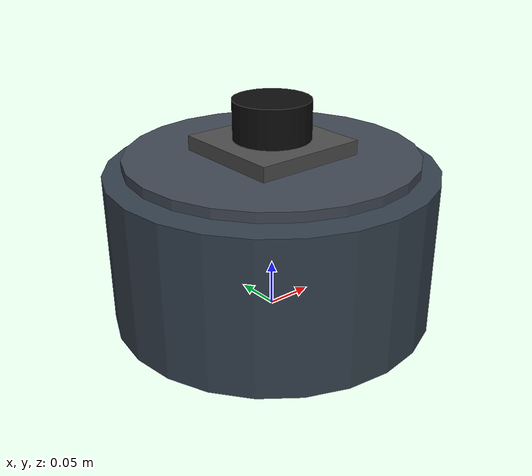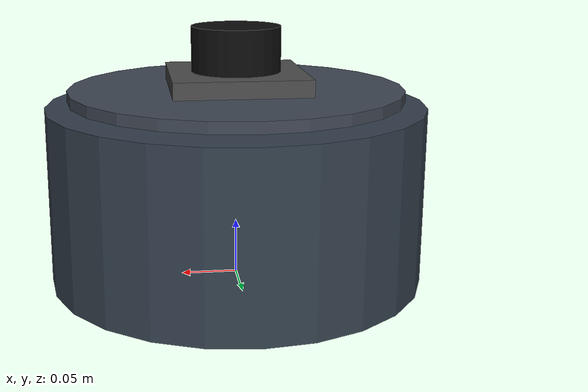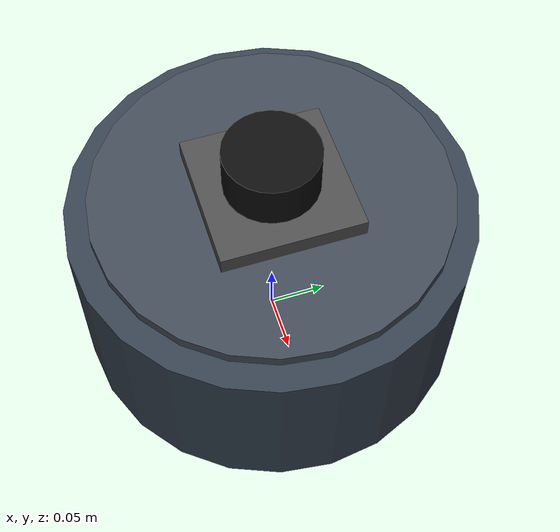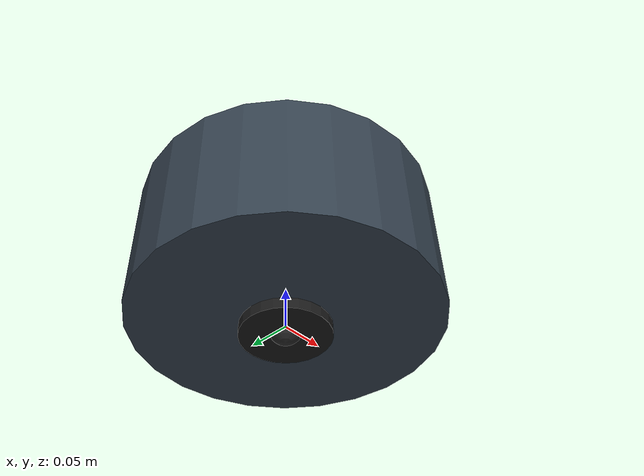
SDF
<?xml version="1.0" encoding="utf-8"?>
<sdf version="1.9">
  <model name="turtlebot4">

    <!-- LINK 0: base_footprint (ground projection) -->
    <link name="base_footprint"/>

    <!-- JOINT: base_footprint → base_link (fixed at chassis height) -->
    <joint name="base_footprint_joint" type="fixed">
      <parent>base_footprint</parent>
      <child>base_link</child>
      <pose>0 0 0.08 0 0 0</pose>
    </joint>

    <!-- LINK 1: base_link (chassis body) -->
    <link name="base_link">
      <pose>0 0 0 0 0 0</pose>
      <inertial>
        <mass>2.50</mass>
        <inertia>
          <ixx>0.05</ixx> <ixy>0.0</ixy> <ixz>0.0</ixz>
          <iyy>0.05</iyy> <iyz>0.0</iyz>
          <izz>0.08</izz>
        </inertia>
      </inertial>
      <!-- Main chassis visual -->
      <visual name="chassis_visual">
        <pose>0 0 0.08 0 0 0</pose>
        <geometry>
          <cylinder>
            <radius>0.17</radius>
            <length>0.16</length>
          </cylinder>
        </geometry>
        <material>
          <ambient>0.2 0.25 0.3 1</ambient>
          <diffuse>0.2 0.25 0.3 1</diffuse>
          <specular>0.05 0.05 0.05 1</specular>
        </material>
      </visual>
      <!-- Top plate visual -->
      <visual name="top_plate_visual">
        <pose>0 0 0.17 0 0 0</pose>
        <geometry>
          <cylinder>
            <radius>0.15</radius>
            <length>0.01</length>
          </cylinder>
        </geometry>
        <material>
          <ambient>0.25 0.28 0.33 1</ambient>
          <diffuse>0.25 0.28 0.33 1</diffuse>
        </material>
      </visual>
      <!-- Chassis collision -->
      <collision name="chassis_collision">
        <pose>0 0 0.08 0 0 0</pose>
        <geometry>
          <cylinder>
            <radius>0.17</radius>
            <length>0.16</length>
          </cylinder>
        </geometry>
      </collision>
    </link>

    <!-- LEFT DRIVE WHEEL -->
    <joint name="left_wheel_joint" type="revolute">
      <parent>base_link</parent>
      <child>left_wheel</child>
      <pose>0 0.18 0.05 0 0 0</pose>
      <axis>
        <xyz>0 1 0</xyz>
      </axis>
      <limit>
        <lower>-1e9</lower>
        <upper>1e9</upper>
        <effort>10</effort>
        <velocity>3.0</velocity>
      </limit>
      <dynamics>
        <damping>0.01</damping>
        <friction>0.8</friction>
      </dynamics>
    </joint>

    <link name="left_wheel">
      <inertial>
        <mass>0.15</mass>
        <inertia>
          <ixx>0.0003</ixx> <ixy>0.0</ixy> <ixz>0.0</ixz>
          <iyy>0.0005</iyy> <iyz>0.0</iyz>
          <izz>0.0003</izz>
        </inertia>
      </inertial>
      <visual name="left_wheel_visual">
        <geometry>
          <cylinder>
            <radius>0.05</radius>
            <length>0.025</length>
          </cylinder>
        </geometry>
        <material>
          <ambient>0.1 0.1 0.1 1</ambient>
          <diffuse>0.1 0.1 0.1 1</diffuse>
        </material>
      </visual>
      <collision name="left_wheel_collision">
        <geometry>
          <cylinder>
            <radius>0.05</radius>
            <length>0.025</length>
          </cylinder>
        </geometry>
        <surface>
          <friction>
            <ode>
              <mu>1.0</mu>
              <mu2>1.0</mu2>
            </ode>
          </friction>
        </surface>
      </collision>
    </link>

    <!-- RIGHT DRIVE WHEEL -->
    <joint name="right_wheel_joint" type="revolute">
      <parent>base_link</parent>
      <child>right_wheel</child>
      <pose>0 -0.18 0.05 0 0 0</pose>
      <axis>
        <xyz>0 1 0</xyz>
      </axis>
      <limit>
        <lower>-1e9</lower>
        <upper>1e9</upper>
        <effort>10</effort>
        <velocity>3.0</velocity>
      </limit>
      <dynamics>
        <damping>0.01</damping>
        <friction>0.8</friction>
      </dynamics>
    </joint>

    <link name="right_wheel">
      <inertial>
        <mass>0.15</mass>
        <inertia>
          <ixx>0.0003</ixx> <ixy>0.0</ixy> <ixz>0.0</ixz>
          <iyy>0.0005</iyy> <iyz>0.0</iyz>
          <izz>0.0003</izz>
        </inertia>
      </inertial>
      <visual name="right_wheel_visual">
        <geometry>
          <cylinder>
            <radius>0.05</radius>
            <length>0.025</length>
          </cylinder>
        </geometry>
        <material>
          <ambient>0.1 0.1 0.1 1</ambient>
          <diffuse>0.1 0.1 0.1 1</diffuse>
        </material>
      </visual>
      <collision name="right_wheel_collision">
        <geometry>
          <cylinder>
            <radius>0.05</radius>
            <length>0.025</length>
          </cylinder>
        </geometry>
        <surface>
          <friction>
            <ode>
              <mu>1.0</mu>
              <mu2>1.0</mu2>
            </ode>
          </friction>
        </surface>
      </collision>
    </link>

    <!-- FRONT CASTER WHEEL (passive) -->
    <joint name="front_caster_joint" type="revolute">
      <parent>base_link</parent>
      <child>front_caster</child>
      <pose>0.14 0 0.03 0 0 0</pose>
      <axis>
        <xyz>0 1 0</xyz>
      </axis>
      <limit>
        <lower>-1e9</lower>
        <upper>1e9</upper>
      </limit>
    </joint>

    <link name="front_caster">
      <inertial>
        <mass>0.05</mass>
        <inertia>
          <ixx>0.00005</ixx> <ixy>0.0</ixy> <ixz>0.0</ixz>
          <iyy>0.00005</iyy> <iyz>0.0</iyz>
          <izz>0.00005</izz>
        </inertia>
      </inertial>
      <visual name="front_caster_visual">
        <geometry>
          <sphere>
            <radius>0.02</radius>
          </sphere>
        </geometry>
        <material>
          <ambient>0.15 0.15 0.15 1</ambient>
          <diffuse>0.15 0.15 0.15 1</diffuse>
        </material>
      </visual>
      <collision name="front_caster_collision">
        <geometry>
          <sphere>
            <radius>0.02</radius>
          </sphere>
        </geometry>
      </collision>
    </link>

    <!-- REAR CASTER WHEEL (passive) -->
    <joint name="rear_caster_joint" type="revolute">
      <parent>base_link</parent>
      <child>rear_caster</child>
      <pose>-0.14 0 0.03 0 0 0</pose>
      <axis>
        <xyz>0 1 0</xyz>
      </axis>
      <limit>
        <lower>-1e9</lower>
        <upper>1e9</upper>
      </limit>
    </joint>

    <link name="rear_caster">
      <inertial>
        <mass>0.05</mass>
        <inertia>
          <ixx>0.00005</ixx> <ixy>0.0</ixy> <ixz>0.0</ixz>
          <iyy>0.00005</iyy> <iyz>0.0</iyz>
          <izz>0.00005</izz>
        </inertia>
      </inertial>
      <visual name="rear_caster_visual">
        <geometry>
          <sphere>
            <radius>0.02</radius>
          </sphere>
        </geometry>
        <material>
          <ambient>0.15 0.15 0.15 1</ambient>
          <diffuse>0.15 0.15 0.15 1</diffuse>
        </material>
      </visual>
      <collision name="rear_caster_collision">
        <geometry>
          <sphere>
            <radius>0.02</radius>
          </sphere>
        </geometry>
      </collision>
    </link>

    <!-- SENSOR MOUNT (plate above chassis for LiDAR + camera) -->
    <link name="sensor_mount">
      <pose>0 0 0.18 0 0 0</pose>
      <inertial>
        <mass>0.10</mass>
        <inertia>
          <ixx>0.001</ixx> <ixy>0.0</ixy> <ixz>0.0</ixz>
          <iyy>0.001</iyy> <iyz>0.0</iyz>
          <izz>0.001</izz>
        </inertia>
      </inertial>
      <visual name="sensor_mount_visual">
        <geometry>
          <box>
            <size>0.12 0.12 0.02</size>
          </box>
        </geometry>
        <material>
          <ambient>0.3 0.3 0.3 1</ambient>
          <diffuse>0.3 0.3 0.3 1</diffuse>
        </material>
      </visual>
      <collision name="sensor_mount_collision">
        <geometry>
          <box>
            <size>0.12 0.12 0.02</size>
          </box>
        </geometry>
      </collision>
    </link>

    <joint name="sensor_mount_joint" type="fixed">
      <parent>base_link</parent>
      <child>sensor_mount</child>
    </joint>

    <!-- RPLIDAR A1M8 (2D LiDAR, 360°) -->
    <link name="lidar_link">
      <pose>0 0 0.21 0 0 0</pose>
      <inertial>
        <mass>0.17</mass>
        <inertia>
          <ixx>0.0001</ixx> <ixy>0.0</ixy> <ixz>0.0</ixz>
          <iyy>0.0001</iyy> <iyz>0.0</iyz>
          <izz>0.0001</izz>
        </inertia>
      </inertial>
      <visual name="lidar_visual">
        <geometry>
          <cylinder>
            <radius>0.04</radius>
            <length>0.04</length>
          </cylinder>
        </geometry>
        <material>
          <ambient>0.05 0.05 0.05 1</ambient>
          <diffuse>0.05 0.05 0.05 1</diffuse>
        </material>
      </visual>
    </link>

    <joint name="lidar_joint" type="fixed">
      <parent>sensor_mount</parent>
      <child>lidar_link</child>
      <pose>0 0 0.03 0 0 0</pose>
    </joint>

    <plugin name="rplidar" filename="libgazebo_ros_ray_sensor.so">
      <ros>
        <namespace>/turtlebot4</namespace>
        <remapping>~/out:=/scan</remapping>
      </ros>
      <update_rate>10</update_rate>
      <sensor>
        <name>lidar</name>
        <type>ray</type>
        <pose>0 0 0 0 0 0</pose>
        <ray>
          <scan>
            <horizontal>
              <samples>360</samples>
              <resolution>1</resolution>
              <min_angle>-3.1416</min_angle>
              <max_angle>3.1416</max_angle>
            </horizontal>
          </scan>
          <range>
            <min>0.15</min>
            <max>12.0</max>
            <resolution>0.001</resolution>
          </range>
        </ray>
      </sensor>
    </plugin>

    <!-- OAK-D RGB Camera (forward-facing) -->
    <link name="camera_link">
      <inertial>
        <mass>0.05</mass>
        <inertia>
          <ixx>0.00001</ixx> <ixy>0.0</ixy> <ixz>0.0</ixz>
          <iyy>0.00001</iyy> <iyz>0.0</iyz>
          <izz>0.00001</izz>
        </inertia>
      </inertial>
      <visual name="camera_visual">
        <geometry>
          <box>
            <size>0.03 0.06 0.02</size>
          </box>
        </geometry>
        <material>
          <ambient>0.1 0.1 0.1 1</ambient>
          <diffuse>0.1 0.1 0.1 1</diffuse>
        </material>
      </visual>
    </link>

    <joint name="camera_joint" type="fixed">
      <parent>sensor_mount</parent>
      <child>camera_link</child>
      <pose>0.14 0 0.02 0 0.2 0</pose>
    </joint>

    <!-- RGB Camera sensor -->
    <plugin name="oakd_rgb" filename="libgazebo_ros_camera.so">
      <ros>
        <namespace>/turtlebot4</namespace>
        <remapping>~/image_raw:=/camera/color/image_raw</remapping>
        <remapping>~/camera_info:=/camera/color/camera_info</remapping>
      </ros>
      <update_rate>30</update_rate>
      <camera>
        <horizontal_fov>1.211</horizontal_fov>
        <image>
          <width>1280</width>
          <height>720</height>
          <format>R8G8B8</format>
        </image>
        <clip>
          <near>0.1</near>
          <far>100</far>
        </clip>
      </camera>
    </plugin>

    <!-- Depth Camera sensor -->
    <plugin name="oakd_depth" filename="libgazebo_ros_depth_camera.so">
      <ros>
        <namespace>/turtlebot4</namespace>
        <remapping>~/image_raw:=/camera/depth/image_rect_raw</remapping>
        <remapping>~/camera_info:=/camera/depth/camera_info</remapping>
        <remapping>~/points:=/camera/depth/points</remapping>
      </ros>
      <update_rate>30</update_rate>
      <camera>
        <horizontal_fov>1.211</horizontal_fov>
        <image>
          <width>848</width>
          <height>480</height>
          <format>R_FLOAT32</format>
        </image>
        <clip>
          <near>0.3</near>
          <far>3.0</far>
        </clip>
      </camera>
    </plugin>

    <!-- IMU (BMI160) -->
    <link name="imu_link"/>

    <joint name="imu_joint" type="fixed">
      <parent>base_link</parent>
      <child>imu_link</child>
      <pose>0 0 0.09 0 0 0</pose>
    </joint>

    <plugin name="bmi160_imu" filename="libgazebo_ros_imu_sensor.so">
      <ros>
        <namespace>/turtlebot4</namespace>
        <remapping>~/out:=/imu/data</remapping>
      </ros>
      <update_rate>200</update_rate>
      <imu>
        <angular_velocity>
          <x>
            <noise type="gaussian">
              <mean>0.0</mean>
              <stddev>0.00017</stddev>
            </noise>
          </x>
          <y>
            <noise type="gaussian">
              <mean>0.0</mean>
              <stddev>0.00017</stddev>
            </noise>
          </y>
          <z>
            <noise type="gaussian">
              <mean>0.0</mean>
              <stddev>0.00017</stddev>
            </noise>
          </z>
        </angular_velocity>
        <linear_acceleration>
          <x>
            <noise type="gaussian">
              <mean>0.0</mean>
              <stddev>0.002</stddev>
            </noise>
          </x>
          <y>
            <noise type="gaussian">
              <mean>0.0</mean>
              <stddev>0.002</stddev>
            </noise>
          </y>
          <z>
            <noise type="gaussian">
              <mean>0.0</mean>
              <stddev>0.002</stddev>
            </noise>
          </z>
        </linear_acceleration>
      </imu>
    </plugin>

    <!-- DIFFERENTIAL DRIVE CONTROLLER -->
    <plugin name="diff_drive" filename="libgazebo_ros_diff_drive.so">
      <ros>
        <namespace>/turtlebot4</namespace>
        <remapping>~/cmd_vel:=/cmd_vel</remapping>
        <remapping>~/odom:=/odom</remapping>
      </ros>
      <update_rate>50</update_rate>
      <left_joint>left_wheel_joint</left_joint>
      <right_joint>right_wheel_joint</right_joint>
      <wheel_separation>0.36</wheel_separation>
      <wheel_diameter>0.10</wheel_diameter>
      <max_wheel_torque>5.0</max_wheel_torque>
      <max_wheel_acceleration>1.0</max_wheel_acceleration>
      <odometry_source>world</odometry_source>
      <publish_odom_tf>true</publish_odom_tf>
      <publish_wheel_tf>false</publish_wheel_tf>
    </plugin>

    <!-- JOINT STATE PUBLISHER -->
    <plugin name="joint_state_publisher" filename="libgazebo_ros_joint_state_publisher.so">
      <ros>
        <namespace>/turtlebot4</namespace>
      </ros>
      <update_rate>50</update_rate>
      <joint_name>left_wheel_joint</joint_name>
      <joint_name>right_wheel_joint</joint_name>
      <joint_name>front_caster_joint</joint_name>
      <joint_name>rear_caster_joint</joint_name>
    </plugin>

  </model>
</sdf>
